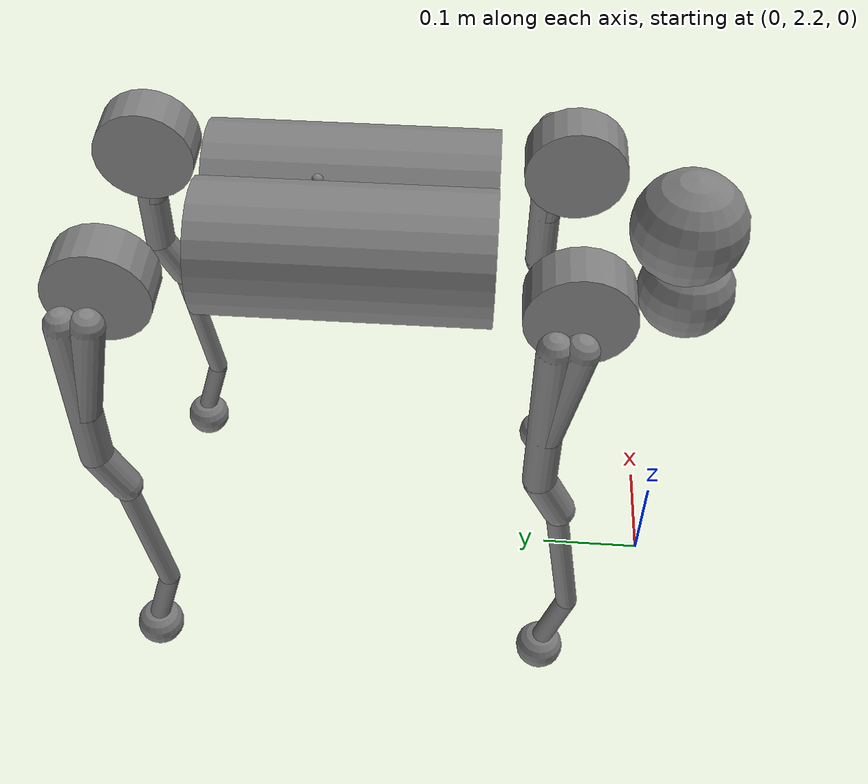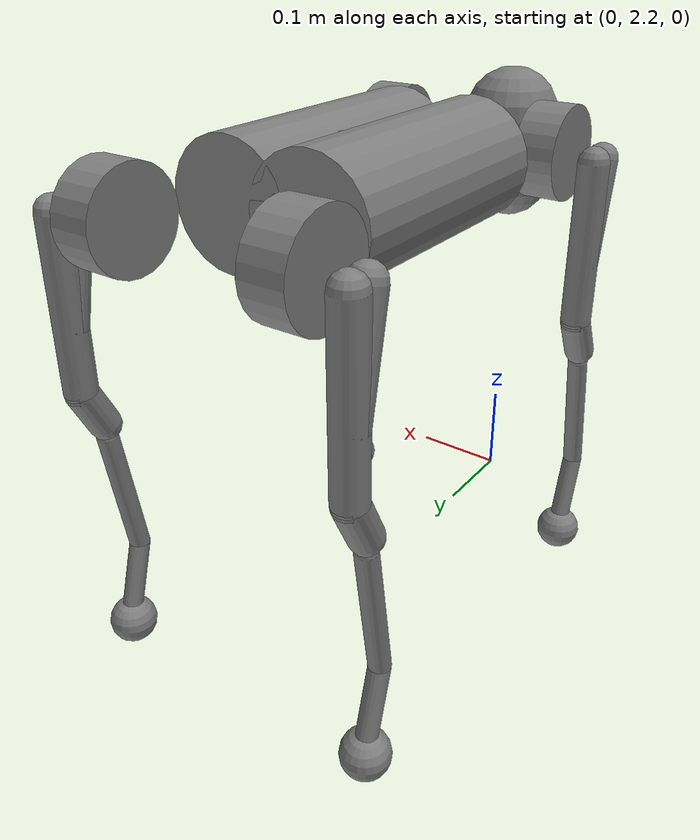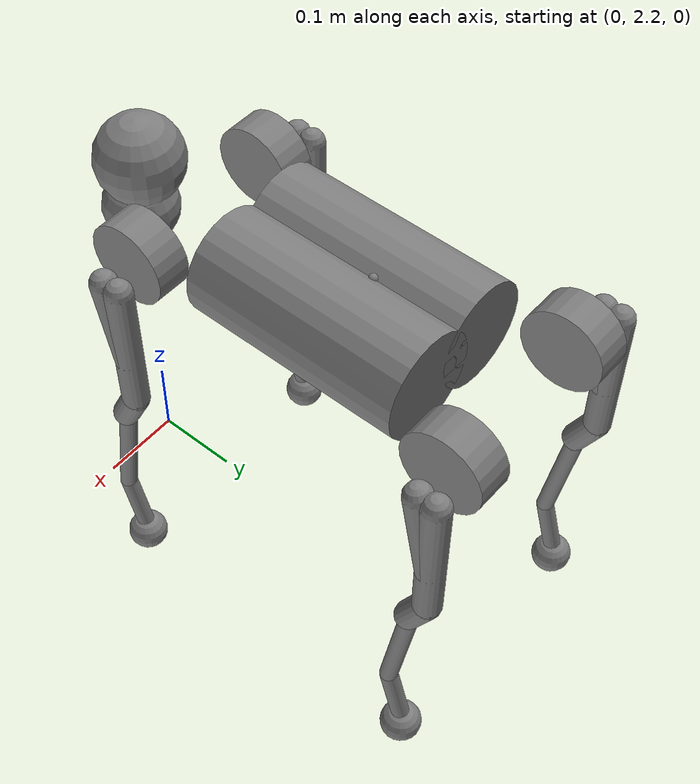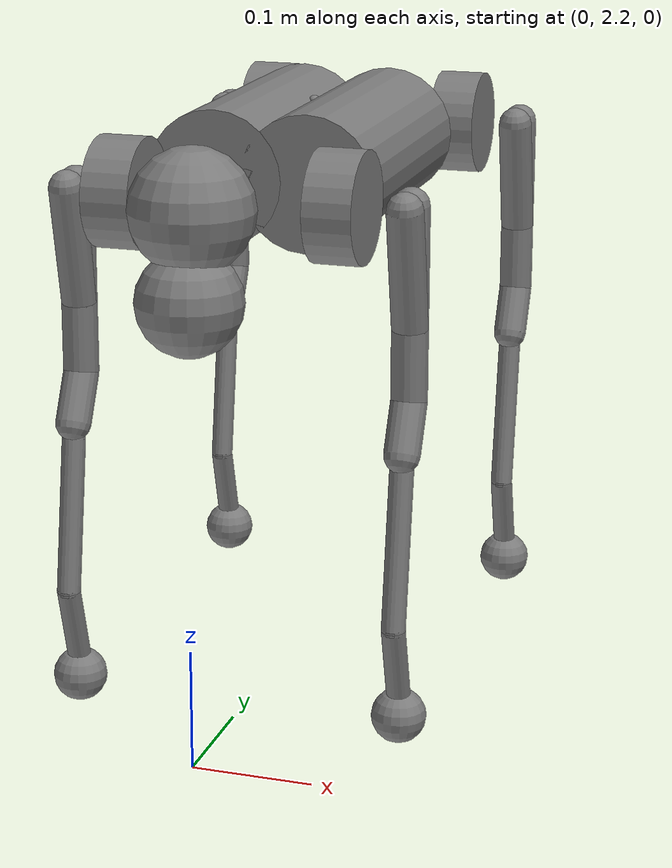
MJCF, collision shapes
<mujoco model="go2">
  <compiler angle="radian" meshdir="robots/its_all_a_mesh" autolimits="true"/>

  <option iterations="1" ls_iterations="5" timestep="0.002" integrator="Euler">
    <flag eulerdamp="disable"/>
  </option>

  <default>
    <default class="go2">
      <geom friction="0.6" margin="0.001" condim="1"/>
      <joint axis="0 1 0" damping="2" armature="0.01"/>
      <general forcerange="-30 30" biastype="affine" gainprm="50 0 0" biasprm="0 -50 -0.5"/>

      <default class="abduction">
        <joint axis="1 0 0" range="-1.0472 1.0472"/>
        <general ctrlrange="-0.9472 0.9472"/>
      </default>
      <default class="hip">
        <joint range="-1.5708 3.4907"/>
        <general ctrlrange="-1.4 2.5"/>
      </default>
      <default class="knee">
        <joint range="-2.7227 -0.83776"/>
        <general ctrlrange="-2.6227 -0.84776"/>
      </default>
      <default class="visual">
        <geom type="mesh" contype="0" conaffinity="0" group="2"/>
      </default>
      <default class="go2foot">
        <site group="1" pos="-0.002 0 -0.213"/>
        <geom rgba="0.231373 0.380392 0.705882 1"/>
      </default>

      <!-- Revised collision defaults modeled after go1 -->
      <default class="collision">
        <geom group="3" type="capsule"/>
        <default class="hip_left1">
          <geom size="0.046 0.02" pos="0 0.045 0" quat="1 1 0 0" type="cylinder"/>
        </default>
        <default class="hip_left2">
          <geom size="0.031 0.02" pos="0 0.065 0" quat="1 1 0 0" type="cylinder"/>
        </default>
        <default class="hip_left3">
          <geom size="0.046 0.02" quat="1 1 0 0" type="cylinder"/>
        </default>
        <default class="hip_right1">
          <geom size="0.046 0.02" pos="0 -0.045 0" quat="1 1 0 0" type="cylinder"/>
        </default>
        <default class="hip_right2">
          <geom size="0.031 0.02" pos="0 -0.065 0" quat="1 1 0 0" type="cylinder"/>
        </default>
        <default class="hip_right3">
          <geom size="0.046 0.02" quat="1 1 0 0" type="cylinder"/>
        </default>
        <default class="thigh1">
          <geom size="0.015" fromto="-0.02 0 0 -0.02 0 -0.16"/>
        </default>
        <default class="thigh2">
          <geom size="0.015" fromto="0 0 0 -0.02 0 -0.1"/>
        </default>
        <default class="thigh3">
          <geom size="0.015" fromto="-0.02 0 -0.16 0 0 -0.2"/>
        </default>
        <default class="calf1">
          <geom size="0.01" fromto="0 0 0 0.02 0 -0.13"/>
        </default>
        <default class="calf2">
          <geom size="0.01" fromto="0.02 0 -0.13 0 0 -0.2"/>
        </default>
        <default class="foot">
          <geom type="sphere" size="0.023" pos="0 0 -0.213" solimp="0.9 0.95 0.023" condim="3"/>
        </default>
      </default>
    </default>
  </default>

  <asset>
    <material name="metal" rgba=".9 .95 .95 1"/>
    <material name="black" rgba="0 0 0 1"/>
    <material name="white" rgba="1 1 1 1"/>
    <material name="gray" rgba="0.671705 0.692426 0.774270 1"/>

    <mesh file="base_0_go2.obj"/>
    <mesh file="base_1_go2.obj"/>
    <mesh file="base_2.obj"/>
    <mesh file="base_3.obj"/>
    <mesh file="base_4.obj"/>
    <mesh file="hip_0.obj"/>
    <mesh file="hip_1.obj"/>
    <mesh file="thigh_0.obj"/>
    <mesh file="thigh_1.obj"/>
    <mesh file="thigh_mirror_0.obj"/>
    <mesh file="thigh_mirror_1.obj"/>
    <mesh file="calf_0.obj"/>
    <mesh file="calf_1.obj"/>
    <mesh file="calf_mirror_0.obj"/>
    <mesh file="calf_mirror_1.obj"/>
    <mesh file="foot.obj"/>
  </asset>
  <worldbody>
    <body name="base" pos="0.0 2.5 0.445" euler="0 0 -1.57" childclass="go2">
      <camera name="track" pos="0.846 -1.465 0.916" xyaxes="0.866 0.500 0.000 -0.171 0.296 0.940" mode="trackcom"/>
      <inertial pos="0.021112 0 -0.005366" quat="-0.000543471 0.713435 -0.00173769 0.700719" mass="6.921"
        diaginertia="0.107027 0.0980771 0.0244531"/>
      <freejoint/>
      <!-- Add camera -->
      <camera name="realsense_cam" pos="0.2 0 0.4" euler="0 -1.57 0" fovy="60"/>

      <!-- Revised base collision geoms: two cylindrical approximations -->
      <geom class="collision" type="cylinder" quat="1 0 1 0" pos="0 -0.04 0" size="0.058 0.125"/>
      <geom class="collision" type="cylinder" quat="1 0 1 0" pos="0 0.04 0" size="0.058 0.125"/>

      <!-- Head and Lidar Collision Spheres -->
      <site name="head" pos="0.285 0 0.01" rgba="1 0 0 1" size="0.02" group="5"/>
      <geom name="head_collision" type="sphere" size="0.05 0.045" pos="0.285 0 0.01" class="collision"/>
      <geom name="lidar_collision" type="sphere" size="0.043" pos="0.293 0 -0.06" class="collision"/>

      <!-- Base visual meshes remain unchanged -->
      <geom mesh="base_0_go2" material="black" class="visual"/>
      <geom mesh="base_1_go2" material="black" class="visual"/>
      <geom mesh="base_2" material="black" class="visual"/>
      <geom mesh="base_3" material="white" class="visual"/>
      <geom mesh="base_4" material="gray" class="visual"/>
      <site name="imu" pos="-0.02557 0 0.04232"/>

      <!-- Left Front Leg -->
      <body name="FL_hip" pos="0.1934 0.0465 0">
        <inertial pos="-0.0054 0.00194 -0.000105" quat="0.497014 0.499245 0.505462 0.498237" mass="0.678"
          diaginertia="0.00088403 0.000596003 0.000479967"/>
        <joint name="FL_hip_joint" class="abduction"/>
        <geom mesh="hip_0" material="metal" class="visual"/>
        <geom mesh="hip_1" material="gray" class="visual"/>
        <!-- Use collision defaults for left hip -->
        <geom name="fl_hip" class="hip_left1"/>
        <body name="FL_thigh" pos="0 0.0955 0">
          <inertial pos="-0.00374 -0.0223 -0.0327" quat="0.829533 0.0847635 -0.0200632 0.551623" mass="1.152"
            diaginertia="0.00594973 0.00584149 0.000878787"/>
          <joint name="FL_thigh_joint" class="hip"/>
          <geom mesh="thigh_0" material="metal" class="visual"/>
          <geom mesh="thigh_1" material="gray" class="visual"/>
          <!-- Use three collision geoms for thigh -->
          <geom name="fl_thigh1" class="thigh1"/>
          <geom name="fl_thigh2" class="thigh2"/>
          <geom name="fl_thigh3" class="thigh3"/>
          <body name="FL_calf" pos="0 0 -0.213">
            <inertial pos="0.00629595 -0.000622121 -0.141417" quat="0.710672 0.00154099 -0.00450087 0.703508"
              mass="0.241352" diaginertia="0.0014901 0.00146356 5.31397e-05"/>
            <joint name="FL_calf_joint" class="knee"/>
            <geom mesh="calf_0" material="gray" class="visual"/>
            <geom mesh="calf_1" material="black" class="visual"/>
            <!-- Two collision geoms for calf -->
            <geom name="fl_calf1" class="calf1"/>
            <geom name="fl_calf2" class="calf2"/>
            <!-- Foot: using the revised foot collision -->
            <geom pos="0 0 -0.213" mesh="foot" class="visual" material="black"/>
            <geom name="FL" class="foot"/>
            <site name="FL_foot" class="go2foot"/>
          </body>
        </body>
      </body>

      <!-- Right Front Leg -->
      <body name="FR_hip" pos="0.1934 -0.0465 0">
        <inertial pos="-0.0054 -0.00194 -0.000105" quat="0.498237 0.505462 0.499245 0.497014" mass="0.678"
          diaginertia="0.00088403 0.000596003 0.000479967"/>
        <joint name="FR_hip_joint" class="abduction"/>
        <geom mesh="hip_0" material="metal" class="visual" quat="4.63268e-05 1 0 0"/>
        <geom mesh="hip_1" material="gray" class="visual" quat="4.63268e-05 1 0 0"/>
        <!-- Use collision default for right hip -->
        <geom name="fr_hip" class="hip_right1"/>
        <body name="FR_thigh" pos="0 -0.0955 0">
          <inertial pos="-0.00374 0.0223 -0.0327" quat="0.551623 -0.0200632 0.0847635 0.829533" mass="1.152"
            diaginertia="0.00594973 0.00584149 0.000878787"/>
          <joint name="FR_thigh_joint" class="hip"/>
          <geom mesh="thigh_mirror_0" material="metal" class="visual"/>
          <geom mesh="thigh_mirror_1" material="gray" class="visual"/>
          <!-- Three collision geoms for thigh -->
          <geom name="fr_thigh1" class="thigh1"/>
          <geom name="fr_thigh2" class="thigh2"/>
          <geom name="fr_thigh3" class="thigh3"/>
          <body name="FR_calf" pos="0 0 -0.213">
            <inertial pos="0.00629595 0.000622121 -0.141417" quat="0.703508 -0.00450087 0.00154099 0.710672"
              mass="0.241352" diaginertia="0.0014901 0.00146356 5.31397e-05"/>
            <joint name="FR_calf_joint" class="knee"/>
            <geom mesh="calf_mirror_0" material="gray" class="visual"/>
            <geom mesh="calf_mirror_1" material="black" class="visual"/>
            <!-- Two collision geoms for calf -->
            <geom name="fr_calf1" class="calf1"/>
            <geom name="fr_calf2" class="calf2"/>
            <!-- Foot collision -->
            <geom pos="0 0 -0.213" mesh="foot" class="visual" material="black"/>
            <geom name="FR" class="foot"/>
            <site name="FR_foot" class="go2foot"/>
          </body>
        </body>
      </body>

      <!-- Left Rear Leg -->
      <body name="RL_hip" pos="-0.1934 0.0465 0">
        <inertial pos="0.0054 0.00194 -0.000105" quat="0.505462 0.498237 0.497014 0.499245" mass="0.678"
          diaginertia="0.00088403 0.000596003 0.000479967"/>
        <joint name="RL_hip_joint" class="abduction"/>
        <geom mesh="hip_0" material="metal" class="visual" quat="4.63268e-05 0 1 0"/>
        <geom mesh="hip_1" material="gray" class="visual" quat="4.63268e-05 0 1 0"/>
        <!-- Use collision default for left hip (rear) -->
        <geom name="rl_hip" class="hip_left1"/>
        <body name="RL_thigh" pos="0 0.0955 0">
          <inertial pos="-0.00374 -0.0223 -0.0327" quat="0.829533 0.0847635 -0.0200632 0.551623" mass="1.152"
            diaginertia="0.00594973 0.00584149 0.000878787"/>
          <joint name="RL_thigh_joint" class="hip"/>
          <geom mesh="thigh_0" material="metal" class="visual"/>
          <geom mesh="thigh_1" material="gray" class="visual"/>
          <!-- Three collision geoms for thigh -->
          <geom name="rl_thigh1" class="thigh1"/>
          <geom name="rl_thigh2" class="thigh2"/>
          <geom name="rl_thigh3" class="thigh3"/>
          <body name="RL_calf" pos="0 0 -0.213">
            <inertial pos="0.00629595 -0.000622121 -0.141417" quat="0.710672 0.00154099 -0.00450087 0.703508"
              mass="0.241352" diaginertia="0.0014901 0.00146356 5.31397e-05"/>
            <joint name="RL_calf_joint" class="knee"/>
            <geom mesh="calf_0" material="gray" class="visual"/>
            <geom mesh="calf_1" material="black" class="visual"/>
            <!-- Two collision geoms for calf -->
            <geom name="rl_calf1" class="calf1"/>
            <geom name="rl_calf2" class="calf2"/>
            <!-- Foot collision -->
            <geom pos="0 0 -0.213" mesh="foot" class="visual" material="black"/>
            <geom name="RL" class="foot"/>
            <site name="RL_foot" class="go2foot"/>
          </body>
        </body>
      </body>

      <!-- Right Rear Leg -->
      <body name="RR_hip" pos="-0.1934 -0.0465 0">
        <inertial pos="0.0054 -0.00194 -0.000105" quat="0.499245 0.497014 0.498237 0.505462" mass="0.678"
          diaginertia="0.00088403 0.000596003 0.000479967"/>
        <joint name="RR_hip_joint" class="abduction"/>
        <geom mesh="hip_0" material="metal" class="visual" quat="2.14617e-09 4.63268e-05 4.63268e-05 -1"/>
        <geom mesh="hip_1" material="gray" class="visual" quat="2.14617e-09 4.63268e-05 4.63268e-05 -1"/>
        <!-- Use collision default for right hip (rear) -->
        <geom name="rr_hip" class="hip_right1"/>
        <body name="RR_thigh" pos="0 -0.0955 0">
          <inertial pos="-0.00374 0.0223 -0.0327" quat="0.551623 -0.0200632 0.0847635 0.829533" mass="1.152"
            diaginertia="0.00594973 0.00584149 0.000878787"/>
          <joint name="RR_thigh_joint" class="hip"/>
          <geom mesh="thigh_mirror_0" material="metal" class="visual"/>
          <geom mesh="thigh_mirror_1" material="gray" class="visual"/>
          <!-- Three collision geoms for thigh -->
          <geom name="rr_thigh1" class="thigh1"/>
          <geom name="rr_thigh2" class="thigh2"/>
          <geom name="rr_thigh3" class="thigh3"/>
          <body name="RR_calf" pos="0 0 -0.213">
            <inertial pos="0.00629595 0.000622121 -0.141417" quat="0.703508 -0.00450087 0.00154099 0.710672"
              mass="0.241352" diaginertia="0.0014901 0.00146356 5.31397e-05"/>
            <joint name="RR_calf_joint" class="knee"/>
            <geom mesh="calf_mirror_0" material="gray" class="visual"/>
            <geom mesh="calf_mirror_1" material="black" class="visual"/>
            <!-- Two collision geoms for calf -->
            <geom name="rr_calf1" class="calf1"/>
            <geom name="rr_calf2" class="calf2"/>
            <!-- Foot collision -->
            <geom pos="0 0 -0.213" mesh="foot" class="visual" material="black"/>
            <geom name="RR" class="foot"/>
            <site name="RR_foot" class="go2foot"/>
          </body>
        </body>
      </body>
    </body>
  </worldbody>

  <actuator>
    <general class="abduction" name="FR_hip" joint="FR_hip_joint"/>
    <general class="hip" name="FR_thigh" joint="FR_thigh_joint"/>
    <general class="knee" name="FR_calf" joint="FR_calf_joint"/>
    <general class="abduction" name="FL_hip" joint="FL_hip_joint"/>
    <general class="hip" name="FL_thigh" joint="FL_thigh_joint"/>
    <general class="knee" name="FL_calf" joint="FL_calf_joint"/>
    <general class="abduction" name="RR_hip" joint="RR_hip_joint"/>
    <general class="hip" name="RR_thigh" joint="RR_thigh_joint"/>
    <general class="knee" name="RR_calf" joint="RR_calf_joint"/>
    <general class="abduction" name="RL_hip" joint="RL_hip_joint"/>
    <general class="hip" name="RL_thigh" joint="RL_thigh_joint"/>
    <general class="knee" name="RL_calf" joint="RL_calf_joint"/>
  </actuator>

  <sensor>
    <jointpos joint="FL_hip_joint" name="abduction_front_left_pos"/>
    <jointpos joint="FL_thigh_joint" name="hip_front_left_pos"/>
    <jointpos joint="FL_calf_joint" name="knee_front_left_pos"/>
    <jointpos joint="RL_hip_joint" name="abduction_hind_left_pos"/>
    <jointpos joint="RL_thigh_joint" name="hip_hind_left_pos"/>
    <jointpos joint="RL_calf_joint" name="knee_hind_left_pos"/>
    <jointpos joint="FR_hip_joint" name="abduction_front_right_pos"/>
    <jointpos joint="FR_thigh_joint" name="hip_front_right_pos"/>
    <jointpos joint="FR_calf_joint" name="knee_front_right_pos"/>
    <jointpos joint="RR_hip_joint" name="abduction_hind_right_pos"/>
    <jointpos joint="RR_thigh_joint" name="hip_hind_right_pos"/>
    <jointpos joint="RR_calf_joint" name="knee_hind_right_pos"/>
    <jointvel joint="FL_hip_joint" name="abduction_front_left_vel"/>
    <jointvel joint="FL_thigh_joint" name="hip_front_left_vel"/>
    <jointvel joint="FL_calf_joint" name="knee_front_left_vel"/>
    <jointvel joint="RL_hip_joint" name="abduction_hind_left_vel"/>
    <jointvel joint="RL_thigh_joint" name="hip_hind_left_vel"/>
    <jointvel joint="RL_calf_joint" name="knee_hind_left_vel"/>
    <jointvel joint="FR_hip_joint" name="abduction_front_right_vel"/>
    <jointvel joint="FR_thigh_joint" name="hip_front_right_vel"/>
    <jointvel joint="FR_calf_joint" name="knee_front_right_vel"/>
    <jointvel joint="RR_hip_joint" name="abduction_hind_right_vel"/>
    <jointvel joint="RR_thigh_joint" name="hip_hind_right_vel"/>
    <jointvel joint="RR_calf_joint" name="knee_hind_right_vel"/>
    <gyro site="imu" name="gyro"/>
    <accelerometer site="imu" name="accelerometer"/>
    <framezaxis objtype="site" objname="imu" name="upvector"/>
    <framexaxis objtype="site" objname="imu" name="forwardvector"/>
    <framepos objtype="site" objname="imu" name="position"/>
    <framequat objtype="site" objname="imu" name="orientation"/>
    <framepos objtype="site" objname="imu" name="global_position"/>
    <framelinvel objtype="site" objname="imu" name="global_linvel"/>
    <frameangvel objtype="site" objname="imu" name="global_angvel"/>
    <velocimeter site="imu" name="local_linvel"/>
    <framelinvel objtype="site" objname="FR_foot" name="FR_foot_global_linvel"/>
    <framelinvel objtype="site" objname="FL_foot" name="FL_foot_global_linvel"/>
    <framelinvel objtype="site" objname="RR_foot" name="RR_foot_global_linvel"/>
    <framelinvel objtype="site" objname="RL_foot" name="RL_foot_global_linvel"/>
    <framepos objtype="site" objname="FR_foot" name="FR_foot_pos" reftype="site" refname="imu"/>
    <framepos objtype="site" objname="FL_foot" name="FL_foot_pos" reftype="site" refname="imu"/>
    <framepos objtype="site" objname="RR_foot" name="RR_foot_pos" reftype="site" refname="imu"/>
    <framepos objtype="site" objname="RL_foot" name="RL_foot_pos" reftype="site" refname="imu"/>
    <framepos objtype="site" objname="head" name="head_pos"/>
  </sensor>

</mujoco>
